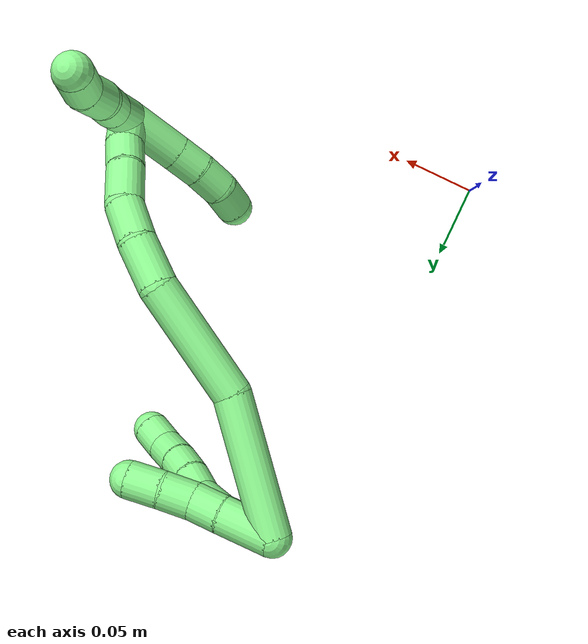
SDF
<sdf version="1.7">
 <world name="default">
  <model name="13">
   <static>0</static>
   <link name="13">
    <collision name="collision-cylinder-e_1_2_8">
     <pose>0.020266 6.4e-05 -0.007694 -3.13322 1.20795 -3.12946</pose>
     <geometry><cylinder><radius>0.0125</radius><length>0.043355</length></cylinder></geometry>
     <surface>
      <friction><ode><mu>1.16</mu><mu2>1.16</mu2><slip1>0</slip1><slip2>0</slip2></ode></friction>
      <contact><ode><kp>1e+06</kp><kd>1</kd><max_vel>0</max_vel><min_depth>0.001</min_depth></ode></contact>
     </surface>
    </collision>
    <visual name="visual-cylinder-e_1_2_8">
     <pose>0.020266 6.4e-05 -0.007694 -3.13322 1.20795 -3.12946</pose>
     <geometry><cylinder><radius>0.0125</radius><length>0.043355</length></cylinder></geometry>
     <material><ambient>0.564706 0.984314 0.572549 1</ambient></material>
    </visual>
    <collision name="collision-cylinder-e_2_8_9">
     <pose>0.050713 -0.001151 -0.022739 2.96927 0.938313 2.80404</pose>
     <geometry><cylinder><radius>0.0125</radius><length>0.025246</length></cylinder></geometry>
     <surface>
      <friction><ode><mu>1.16</mu><mu2>1.16</mu2><slip1>0</slip1><slip2>0</slip2></ode></friction>
      <contact><ode><kp>1e+06</kp><kd>1</kd><max_vel>0</max_vel><min_depth>0.001</min_depth></ode></contact>
     </surface>
    </collision>
    <visual name="visual-cylinder-e_2_8_9">
     <pose>0.050713 -0.001151 -0.022739 2.96927 0.938313 2.80404</pose>
     <geometry><cylinder><radius>0.0125</radius><length>0.025246</length></cylinder></geometry>
     <material><ambient>0.564706 0.984314 0.572549 1</ambient></material>
    </visual>
    <collision name="collision-cylinder-e_3_9_10">
     <pose>0.068609 -0.006374 -0.035651 2.52458 0.847091 1.91095</pose>
     <geometry><cylinder><radius>0.0125</radius><length>0.02059</length></cylinder></geometry>
     <surface>
      <friction><ode><mu>1.16</mu><mu2>1.16</mu2><slip1>0</slip1><slip2>0</slip2></ode></friction>
      <contact><ode><kp>1e+06</kp><kd>1</kd><max_vel>0</max_vel><min_depth>0.001</min_depth></ode></contact>
     </surface>
    </collision>
    <visual name="visual-cylinder-e_3_9_10">
     <pose>0.068609 -0.006374 -0.035651 2.52458 0.847091 1.91095</pose>
     <geometry><cylinder><radius>0.0125</radius><length>0.02059</length></cylinder></geometry>
     <material><ambient>0.564706 0.984314 0.572549 1</ambient></material>
    </visual>
    <collision name="collision-cylinder-e_4_10_11">
     <pose>0.084318 -0.013175 -0.046813 2.67021 0.90426 2.22316</pose>
     <geometry><cylinder><radius>0.0125</radius><length>0.020342</length></cylinder></geometry>
     <surface>
      <friction><ode><mu>1.16</mu><mu2>1.16</mu2><slip1>0</slip1><slip2>0</slip2></ode></friction>
      <contact><ode><kp>1e+06</kp><kd>1</kd><max_vel>0</max_vel><min_depth>0.001</min_depth></ode></contact>
     </surface>
    </collision>
    <visual name="visual-cylinder-e_4_10_11">
     <pose>0.084318 -0.013175 -0.046813 2.67021 0.90426 2.22316</pose>
     <geometry><cylinder><radius>0.0125</radius><length>0.020342</length></cylinder></geometry>
     <material><ambient>0.564706 0.984314 0.572549 1</ambient></material>
    </visual>
    <collision name="collision-cylinder-e_5_11_12">
     <pose>0.100402 -0.017932 -0.05834 2.831 0.915192 2.52598</pose>
     <geometry><cylinder><radius>0.0125</radius><length>0.020412</length></cylinder></geometry>
     <surface>
      <friction><ode><mu>1.16</mu><mu2>1.16</mu2><slip1>0</slip1><slip2>0</slip2></ode></friction>
      <contact><ode><kp>1e+06</kp><kd>1</kd><max_vel>0</max_vel><min_depth>0.001</min_depth></ode></contact>
     </surface>
    </collision>
    <visual name="visual-cylinder-e_5_11_12">
     <pose>0.100402 -0.017932 -0.05834 2.831 0.915192 2.52598</pose>
     <geometry><cylinder><radius>0.0125</radius><length>0.020412</length></cylinder></geometry>
     <material><ambient>0.564706 0.984314 0.572549 1</ambient></material>
    </visual>
    <collision name="collision-cylinder-e_6_12_6">
     <pose>0.117126 -0.023327 -0.067981 2.38714 1.03716 1.92786</pose>
     <geometry><cylinder><radius>0.0125</radius><length>0.020055</length></cylinder></geometry>
     <surface>
      <friction><ode><mu>1.16</mu><mu2>1.16</mu2><slip1>0</slip1><slip2>0</slip2></ode></friction>
      <contact><ode><kp>1e+06</kp><kd>1</kd><max_vel>0</max_vel><min_depth>0.001</min_depth></ode></contact>
     </surface>
    </collision>
    <visual name="visual-cylinder-e_6_12_6">
     <pose>0.117126 -0.023327 -0.067981 2.38714 1.03716 1.92786</pose>
     <geometry><cylinder><radius>0.0125</radius><length>0.020055</length></cylinder></geometry>
     <material><ambient>0.564706 0.984314 0.572549 1</ambient></material>
    </visual>
    <collision name="collision-cylinder-e_1_2_13">
     <pose>0.017376 -0.001078 0.00037 1.24059 1.50529 1.17927</pose>
     <geometry><cylinder><radius>0.0125</radius><length>0.034827</length></cylinder></geometry>
     <surface>
      <friction><ode><mu>1.16</mu><mu2>1.16</mu2><slip1>0</slip1><slip2>0</slip2></ode></friction>
      <contact><ode><kp>1e+06</kp><kd>1</kd><max_vel>0</max_vel><min_depth>0.001</min_depth></ode></contact>
     </surface>
    </collision>
    <visual name="visual-cylinder-e_1_2_13">
     <pose>0.017376 -0.001078 0.00037 1.24059 1.50529 1.17927</pose>
     <geometry><cylinder><radius>0.0125</radius><length>0.034827</length></cylinder></geometry>
     <material><ambient>0.564706 0.984314 0.572549 1</ambient></material>
    </visual>
    <collision name="collision-cylinder-e_2_13_14">
     <pose>0.045166 -0.002773 0.000217 2.27406 1.49334 2.21345</pose>
     <geometry><cylinder><radius>0.0125</radius><length>0.020891</length></cylinder></geometry>
     <surface>
      <friction><ode><mu>1.16</mu><mu2>1.16</mu2><slip1>0</slip1><slip2>0</slip2></ode></friction>
      <contact><ode><kp>1e+06</kp><kd>1</kd><max_vel>0</max_vel><min_depth>0.001</min_depth></ode></contact>
     </surface>
    </collision>
    <visual name="visual-cylinder-e_2_13_14">
     <pose>0.045166 -0.002773 0.000217 2.27406 1.49334 2.21345</pose>
     <geometry><cylinder><radius>0.0125</radius><length>0.020891</length></cylinder></geometry>
     <material><ambient>0.564706 0.984314 0.572549 1</ambient></material>
    </visual>
    <collision name="collision-cylinder-e_3_14_15">
     <pose>0.066109 -0.00347 0.001955 0.035255 1.3591 0.028484</pose>
     <geometry><cylinder><radius>0.0125</radius><length>0.021538</length></cylinder></geometry>
     <surface>
      <friction><ode><mu>1.16</mu><mu2>1.16</mu2><slip1>0</slip1><slip2>0</slip2></ode></friction>
      <contact><ode><kp>1e+06</kp><kd>1</kd><max_vel>0</max_vel><min_depth>0.001</min_depth></ode></contact>
     </surface>
    </collision>
    <visual name="visual-cylinder-e_3_14_15">
     <pose>0.066109 -0.00347 0.001955 0.035255 1.3591 0.028484</pose>
     <geometry><cylinder><radius>0.0125</radius><length>0.021538</length></cylinder></geometry>
     <material><ambient>0.564706 0.984314 0.572549 1</ambient></material>
    </visual>
    <collision name="collision-cylinder-e_4_15_5">
     <pose>0.087947 -0.003062 0.005302 -0.422093 1.46593 -0.381063</pose>
     <geometry><cylinder><radius>0.0125</radius><length>0.022744</length></cylinder></geometry>
     <surface>
      <friction><ode><mu>1.16</mu><mu2>1.16</mu2><slip1>0</slip1><slip2>0</slip2></ode></friction>
      <contact><ode><kp>1e+06</kp><kd>1</kd><max_vel>0</max_vel><min_depth>0.001</min_depth></ode></contact>
     </surface>
    </collision>
    <visual name="visual-cylinder-e_4_15_5">
     <pose>0.087947 -0.003062 0.005302 -0.422093 1.46593 -0.381063</pose>
     <geometry><cylinder><radius>0.0125</radius><length>0.022744</length></cylinder></geometry>
     <material><ambient>0.564706 0.984314 0.572549 1</ambient></material>
    </visual>
    <collision name="collision-cylinder-e_1_2_16">
     <pose>0.024368 -0.038166 0.007991 1.36441 0.558541 0.457724</pose>
     <geometry><cylinder><radius>0.0125</radius><length>0.091962</length></cylinder></geometry>
     <surface>
      <friction><ode><mu>1.16</mu><mu2>1.16</mu2><slip1>0</slip1><slip2>0</slip2></ode></friction>
      <contact><ode><kp>1e+06</kp><kd>1</kd><max_vel>0</max_vel><min_depth>0.001</min_depth></ode></contact>
     </surface>
    </collision>
    <visual name="visual-cylinder-e_1_2_16">
     <pose>0.024368 -0.038166 0.007991 1.36441 0.558541 0.457724</pose>
     <geometry><cylinder><radius>0.0125</radius><length>0.091962</length></cylinder></geometry>
     <material><ambient>0.564706 0.984314 0.572549 1</ambient></material>
    </visual>
    <collision name="collision-cylinder-e_2_16_17">
     <pose>0.077788 -0.100457 0.028456 1.09357 0.819057 0.516624</pose>
     <geometry><cylinder><radius>0.0125</radius><length>0.079543</length></cylinder></geometry>
     <surface>
      <friction><ode><mu>1.16</mu><mu2>1.16</mu2><slip1>0</slip1><slip2>0</slip2></ode></friction>
      <contact><ode><kp>1e+06</kp><kd>1</kd><max_vel>0</max_vel><min_depth>0.001</min_depth></ode></contact>
     </surface>
    </collision>
    <visual name="visual-cylinder-e_2_16_17">
     <pose>0.077788 -0.100457 0.028456 1.09357 0.819057 0.516624</pose>
     <geometry><cylinder><radius>0.0125</radius><length>0.079543</length></cylinder></geometry>
     <material><ambient>0.564706 0.984314 0.572549 1</ambient></material>
    </visual>
    <collision name="collision-cylinder-e_3_17_18">
     <pose>0.11805 -0.135745 0.041228 1.54428 0.787324 0.768714</pose>
     <geometry><cylinder><radius>0.0125</radius><length>0.031644</length></cylinder></geometry>
     <surface>
      <friction><ode><mu>1.16</mu><mu2>1.16</mu2><slip1>0</slip1><slip2>0</slip2></ode></friction>
      <contact><ode><kp>1e+06</kp><kd>1</kd><max_vel>0</max_vel><min_depth>0.001</min_depth></ode></contact>
     </surface>
    </collision>
    <visual name="visual-cylinder-e_3_17_18">
     <pose>0.11805 -0.135745 0.041228 1.54428 0.787324 0.768714</pose>
     <geometry><cylinder><radius>0.0125</radius><length>0.031644</length></cylinder></geometry>
     <material><ambient>0.564706 0.984314 0.572549 1</ambient></material>
    </visual>
    <collision name="collision-cylinder-e_4_18_19">
     <pose>0.138296 -0.15658 0.039167 1.80976 0.736999 0.913654</pose>
     <geometry><cylinder><radius>0.0125</radius><length>0.02689</length></cylinder></geometry>
     <surface>
      <friction><ode><mu>1.16</mu><mu2>1.16</mu2><slip1>0</slip1><slip2>0</slip2></ode></friction>
      <contact><ode><kp>1e+06</kp><kd>1</kd><max_vel>0</max_vel><min_depth>0.001</min_depth></ode></contact>
     </surface>
    </collision>
    <visual name="visual-cylinder-e_4_18_19">
     <pose>0.138296 -0.15658 0.039167 1.80976 0.736999 0.913654</pose>
     <geometry><cylinder><radius>0.0125</radius><length>0.02689</length></cylinder></geometry>
     <material><ambient>0.564706 0.984314 0.572549 1</ambient></material>
    </visual>
    <collision name="collision-cylinder-e_5_19_20">
     <pose>0.153596 -0.177753 0.03142 2.00908 0.458246 0.703248</pose>
     <geometry><cylinder><radius>0.0125</radius><length>0.028323</length></cylinder></geometry>
     <surface>
      <friction><ode><mu>1.16</mu><mu2>1.16</mu2><slip1>0</slip1><slip2>0</slip2></ode></friction>
      <contact><ode><kp>1e+06</kp><kd>1</kd><max_vel>0</max_vel><min_depth>0.001</min_depth></ode></contact>
     </surface>
    </collision>
    <visual name="visual-cylinder-e_5_19_20">
     <pose>0.153596 -0.177753 0.03142 2.00908 0.458246 0.703248</pose>
     <geometry><cylinder><radius>0.0125</radius><length>0.028323</length></cylinder></geometry>
     <material><ambient>0.564706 0.984314 0.572549 1</ambient></material>
    </visual>
    <collision name="collision-cylinder-e_6_20_21">
     <pose>0.165252 -0.197065 0.021286 2.1166 0.532922 0.903354</pose>
     <geometry><cylinder><radius>0.0125</radius><length>0.021222</length></cylinder></geometry>
     <surface>
      <friction><ode><mu>1.16</mu><mu2>1.16</mu2><slip1>0</slip1><slip2>0</slip2></ode></friction>
      <contact><ode><kp>1e+06</kp><kd>1</kd><max_vel>0</max_vel><min_depth>0.001</min_depth></ode></contact>
     </surface>
    </collision>
    <visual name="visual-cylinder-e_6_20_21">
     <pose>0.165252 -0.197065 0.021286 2.1166 0.532922 0.903354</pose>
     <geometry><cylinder><radius>0.0125</radius><length>0.021222</length></cylinder></geometry>
     <material><ambient>0.564706 0.984314 0.572549 1</ambient></material>
    </visual>
    <collision name="collision-cylinder-e_7_21_1">
     <pose>0.174084 -0.213857 0.013117 1.93519 0.343826 0.493824</pose>
     <geometry><cylinder><radius>0.0125</radius><length>0.020416</length></cylinder></geometry>
     <surface>
      <friction><ode><mu>1.16</mu><mu2>1.16</mu2><slip1>0</slip1><slip2>0</slip2></ode></friction>
      <contact><ode><kp>1e+06</kp><kd>1</kd><max_vel>0</max_vel><min_depth>0.001</min_depth></ode></contact>
     </surface>
    </collision>
    <visual name="visual-cylinder-e_7_21_1">
     <pose>0.174084 -0.213857 0.013117 1.93519 0.343826 0.493824</pose>
     <geometry><cylinder><radius>0.0125</radius><length>0.020416</length></cylinder></geometry>
     <material><ambient>0.564706 0.984314 0.572549 1</ambient></material>
    </visual>
    <collision name="collision-cylinder-e_1_1_22">
     <pose>0.163641 -0.217847 -0.003185 -2.77197 -0.788119 2.29656</pose>
     <geometry><cylinder><radius>0.0125</radius><length>0.039165</length></cylinder></geometry>
     <surface>
      <friction><ode><mu>1.16</mu><mu2>1.16</mu2><slip1>0</slip1><slip2>0</slip2></ode></friction>
      <contact><ode><kp>1e+06</kp><kd>1</kd><max_vel>0</max_vel><min_depth>0.001</min_depth></ode></contact>
     </surface>
    </collision>
    <visual name="visual-cylinder-e_1_1_22">
     <pose>0.163641 -0.217847 -0.003185 -2.77197 -0.788119 2.29656</pose>
     <geometry><cylinder><radius>0.0125</radius><length>0.039165</length></cylinder></geometry>
     <material><ambient>0.564706 0.984314 0.572549 1</ambient></material>
    </visual>
    <collision name="collision-cylinder-e_2_22_23">
     <pose>0.142489 -0.210163 -0.022384 -2.7386 -0.813293 2.25579</pose>
     <geometry><cylinder><radius>0.0125</radius><length>0.020005</length></cylinder></geometry>
     <surface>
      <friction><ode><mu>1.16</mu><mu2>1.16</mu2><slip1>0</slip1><slip2>0</slip2></ode></friction>
      <contact><ode><kp>1e+06</kp><kd>1</kd><max_vel>0</max_vel><min_depth>0.001</min_depth></ode></contact>
     </surface>
    </collision>
    <visual name="visual-cylinder-e_2_22_23">
     <pose>0.142489 -0.210163 -0.022384 -2.7386 -0.813293 2.25579</pose>
     <geometry><cylinder><radius>0.0125</radius><length>0.020005</length></cylinder></geometry>
     <material><ambient>0.564706 0.984314 0.572549 1</ambient></material>
    </visual>
    <collision name="collision-cylinder-e_3_23_24">
     <pose>0.128737 -0.20418 -0.035796 -2.70732 -0.692584 2.04407</pose>
     <geometry><cylinder><radius>0.0125</radius><length>0.02031</length></cylinder></geometry>
     <surface>
      <friction><ode><mu>1.16</mu><mu2>1.16</mu2><slip1>0</slip1><slip2>0</slip2></ode></friction>
      <contact><ode><kp>1e+06</kp><kd>1</kd><max_vel>0</max_vel><min_depth>0.001</min_depth></ode></contact>
     </surface>
    </collision>
    <visual name="visual-cylinder-e_3_23_24">
     <pose>0.128737 -0.20418 -0.035796 -2.70732 -0.692584 2.04407</pose>
     <geometry><cylinder><radius>0.0125</radius><length>0.02031</length></cylinder></geometry>
     <material><ambient>0.564706 0.984314 0.572549 1</ambient></material>
    </visual>
    <collision name="collision-cylinder-e_4_24_4">
     <pose>0.118506 -0.196976 -0.051598 -2.71927 -0.373792 1.44578</pose>
     <geometry><cylinder><radius>0.0125</radius><length>0.020519</length></cylinder></geometry>
     <surface>
      <friction><ode><mu>1.16</mu><mu2>1.16</mu2><slip1>0</slip1><slip2>0</slip2></ode></friction>
      <contact><ode><kp>1e+06</kp><kd>1</kd><max_vel>0</max_vel><min_depth>0.001</min_depth></ode></contact>
     </surface>
    </collision>
    <visual name="visual-cylinder-e_4_24_4">
     <pose>0.118506 -0.196976 -0.051598 -2.71927 -0.373792 1.44578</pose>
     <geometry><cylinder><radius>0.0125</radius><length>0.020519</length></cylinder></geometry>
     <material><ambient>0.564706 0.984314 0.572549 1</ambient></material>
    </visual>
    <collision name="collision-cylinder-e_1_1_25">
     <pose>0.175482 -0.221972 0.026618 -0.051019 -0.120001 0.003066</pose>
     <geometry><cylinder><radius>0.0125</radius><length>0.034142</length></cylinder></geometry>
     <surface>
      <friction><ode><mu>1.16</mu><mu2>1.16</mu2><slip1>0</slip1><slip2>0</slip2></ode></friction>
      <contact><ode><kp>1e+06</kp><kd>1</kd><max_vel>0</max_vel><min_depth>0.001</min_depth></ode></contact>
     </surface>
    </collision>
    <visual name="visual-cylinder-e_1_1_25">
     <pose>0.175482 -0.221972 0.026618 -0.051019 -0.120001 0.003066</pose>
     <geometry><cylinder><radius>0.0125</radius><length>0.034142</length></cylinder></geometry>
     <material><ambient>0.564706 0.984314 0.572549 1</ambient></material>
    </visual>
    <collision name="collision-cylinder-e_2_25_26">
     <pose>0.171163 -0.221086 0.05487 -0.001887 -0.198275 0.000188</pose>
     <geometry><cylinder><radius>0.0125</radius><length>0.023105</length></cylinder></geometry>
     <surface>
      <friction><ode><mu>1.16</mu><mu2>1.16</mu2><slip1>0</slip1><slip2>0</slip2></ode></friction>
      <contact><ode><kp>1e+06</kp><kd>1</kd><max_vel>0</max_vel><min_depth>0.001</min_depth></ode></contact>
     </surface>
    </collision>
    <visual name="visual-cylinder-e_2_25_26">
     <pose>0.171163 -0.221086 0.05487 -0.001887 -0.198275 0.000188</pose>
     <geometry><cylinder><radius>0.0125</radius><length>0.023105</length></cylinder></geometry>
     <material><ambient>0.564706 0.984314 0.572549 1</ambient></material>
    </visual>
    <collision name="collision-cylinder-e_3_26_27">
     <pose>0.170052 -0.220752 0.076713 -0.029745 0.110255 -0.001642</pose>
     <geometry><cylinder><radius>0.0125</radius><length>0.021171</length></cylinder></geometry>
     <surface>
      <friction><ode><mu>1.16</mu><mu2>1.16</mu2><slip1>0</slip1><slip2>0</slip2></ode></friction>
      <contact><ode><kp>1e+06</kp><kd>1</kd><max_vel>0</max_vel><min_depth>0.001</min_depth></ode></contact>
     </surface>
    </collision>
    <visual name="visual-cylinder-e_3_26_27">
     <pose>0.170052 -0.220752 0.076713 -0.029745 0.110255 -0.001642</pose>
     <geometry><cylinder><radius>0.0125</radius><length>0.021171</length></cylinder></geometry>
     <material><ambient>0.564706 0.984314 0.572549 1</ambient></material>
    </visual>
    <collision name="collision-cylinder-e_4_27_3">
     <pose>0.170063 -0.222902 0.097672 0.231624 -0.107138 -0.012475</pose>
     <geometry><cylinder><radius>0.0125</radius><length>0.021582</length></cylinder></geometry>
     <surface>
      <friction><ode><mu>1.16</mu><mu2>1.16</mu2><slip1>0</slip1><slip2>0</slip2></ode></friction>
      <contact><ode><kp>1e+06</kp><kd>1</kd><max_vel>0</max_vel><min_depth>0.001</min_depth></ode></contact>
     </surface>
    </collision>
    <visual name="visual-cylinder-e_4_27_3">
     <pose>0.170063 -0.222902 0.097672 0.231624 -0.107138 -0.012475</pose>
     <geometry><cylinder><radius>0.0125</radius><length>0.021582</length></cylinder></geometry>
     <material><ambient>0.564706 0.984314 0.572549 1</ambient></material>
    </visual>
    <collision name="collision-sphere-3">
     <pose>0.168909 -0.225365 0.108114 0 -0 0</pose>
     <geometry><sphere><radius>0.0125</radius></sphere></geometry>
     <surface>
      <friction><ode><mu>1.16</mu><mu2>1.16</mu2><slip1>0</slip1><slip2>0</slip2></ode></friction>
      <contact><ode><kp>1e+06</kp><kd>1</kd><max_vel>0</max_vel><min_depth>0.001</min_depth></ode></contact>
     </surface>
    </collision>
    <visual name="visual-sphere-3">
     <pose>0.168909 -0.225365 0.108114 0 -0 0</pose>
     <geometry><sphere><radius>0.0125</radius></sphere></geometry>
     <material><ambient>0.564706 0.984314 0.572549 1</ambient></material>
    </visual>
    <collision name="collision-sphere-27">
     <pose>0.171216 -0.220439 0.08723 0 -0 0</pose>
     <geometry><sphere><radius>0.0125</radius></sphere></geometry>
     <surface>
      <friction><ode><mu>1.16</mu><mu2>1.16</mu2><slip1>0</slip1><slip2>0</slip2></ode></friction>
      <contact><ode><kp>1e+06</kp><kd>1</kd><max_vel>0</max_vel><min_depth>0.001</min_depth></ode></contact>
     </surface>
    </collision>
    <visual name="visual-sphere-27">
     <pose>0.171216 -0.220439 0.08723 0 -0 0</pose>
     <geometry><sphere><radius>0.0125</radius></sphere></geometry>
     <material><ambient>0.564706 0.984314 0.572549 1</ambient></material>
    </visual>
    <collision name="collision-sphere-26">
     <pose>0.168887 -0.221065 0.066196 0 -0 0</pose>
     <geometry><sphere><radius>0.0125</radius></sphere></geometry>
     <surface>
      <friction><ode><mu>1.16</mu><mu2>1.16</mu2><slip1>0</slip1><slip2>0</slip2></ode></friction>
      <contact><ode><kp>1e+06</kp><kd>1</kd><max_vel>0</max_vel><min_depth>0.001</min_depth></ode></contact>
     </surface>
    </collision>
    <visual name="visual-sphere-26">
     <pose>0.168887 -0.221065 0.066196 0 -0 0</pose>
     <geometry><sphere><radius>0.0125</radius></sphere></geometry>
     <material><ambient>0.564706 0.984314 0.572549 1</ambient></material>
    </visual>
    <collision name="collision-sphere-25">
     <pose>0.173438 -0.221108 0.043544 0 -0 0</pose>
     <geometry><sphere><radius>0.0125</radius></sphere></geometry>
     <surface>
      <friction><ode><mu>1.16</mu><mu2>1.16</mu2><slip1>0</slip1><slip2>0</slip2></ode></friction>
      <contact><ode><kp>1e+06</kp><kd>1</kd><max_vel>0</max_vel><min_depth>0.001</min_depth></ode></contact>
     </surface>
    </collision>
    <visual name="visual-sphere-25">
     <pose>0.173438 -0.221108 0.043544 0 -0 0</pose>
     <geometry><sphere><radius>0.0125</radius></sphere></geometry>
     <material><ambient>0.564706 0.984314 0.572549 1</ambient></material>
    </visual>
    <collision name="collision-sphere-4">
     <pose>0.11476 -0.193062 -0.06031 0 -0 0</pose>
     <geometry><sphere><radius>0.0125</radius></sphere></geometry>
     <surface>
      <friction><ode><mu>1.16</mu><mu2>1.16</mu2><slip1>0</slip1><slip2>0</slip2></ode></friction>
      <contact><ode><kp>1e+06</kp><kd>1</kd><max_vel>0</max_vel><min_depth>0.001</min_depth></ode></contact>
     </surface>
    </collision>
    <visual name="visual-sphere-4">
     <pose>0.11476 -0.193062 -0.06031 0 -0 0</pose>
     <geometry><sphere><radius>0.0125</radius></sphere></geometry>
     <material><ambient>0.564706 0.984314 0.572549 1</ambient></material>
    </visual>
    <collision name="collision-sphere-24">
     <pose>0.122253 -0.200891 -0.042886 0 -0 0</pose>
     <geometry><sphere><radius>0.0125</radius></sphere></geometry>
     <surface>
      <friction><ode><mu>1.16</mu><mu2>1.16</mu2><slip1>0</slip1><slip2>0</slip2></ode></friction>
      <contact><ode><kp>1e+06</kp><kd>1</kd><max_vel>0</max_vel><min_depth>0.001</min_depth></ode></contact>
     </surface>
    </collision>
    <visual name="visual-sphere-24">
     <pose>0.122253 -0.200891 -0.042886 0 -0 0</pose>
     <geometry><sphere><radius>0.0125</radius></sphere></geometry>
     <material><ambient>0.564706 0.984314 0.572549 1</ambient></material>
    </visual>
    <collision name="collision-sphere-23">
     <pose>0.135221 -0.207468 -0.028706 0 -0 0</pose>
     <geometry><sphere><radius>0.0125</radius></sphere></geometry>
     <surface>
      <friction><ode><mu>1.16</mu><mu2>1.16</mu2><slip1>0</slip1><slip2>0</slip2></ode></friction>
      <contact><ode><kp>1e+06</kp><kd>1</kd><max_vel>0</max_vel><min_depth>0.001</min_depth></ode></contact>
     </surface>
    </collision>
    <visual name="visual-sphere-23">
     <pose>0.135221 -0.207468 -0.028706 0 -0 0</pose>
     <geometry><sphere><radius>0.0125</radius></sphere></geometry>
     <material><ambient>0.564706 0.984314 0.572549 1</ambient></material>
    </visual>
    <collision name="collision-sphere-22">
     <pose>0.149756 -0.212859 -0.016062 0 -0 0</pose>
     <geometry><sphere><radius>0.0125</radius></sphere></geometry>
     <surface>
      <friction><ode><mu>1.16</mu><mu2>1.16</mu2><slip1>0</slip1><slip2>0</slip2></ode></friction>
      <contact><ode><kp>1e+06</kp><kd>1</kd><max_vel>0</max_vel><min_depth>0.001</min_depth></ode></contact>
     </surface>
    </collision>
    <visual name="visual-sphere-22">
     <pose>0.149756 -0.212859 -0.016062 0 -0 0</pose>
     <geometry><sphere><radius>0.0125</radius></sphere></geometry>
     <material><ambient>0.564706 0.984314 0.572549 1</ambient></material>
    </visual>
    <collision name="collision-sphere-1">
     <pose>0.177525 -0.222836 0.009691 0 -0 0</pose>
     <geometry><sphere><radius>0.0125</radius></sphere></geometry>
     <surface>
      <friction><ode><mu>1.16</mu><mu2>1.16</mu2><slip1>0</slip1><slip2>0</slip2></ode></friction>
      <contact><ode><kp>1e+06</kp><kd>1</kd><max_vel>0</max_vel><min_depth>0.001</min_depth></ode></contact>
     </surface>
    </collision>
    <visual name="visual-sphere-1">
     <pose>0.177525 -0.222836 0.009691 0 -0 0</pose>
     <geometry><sphere><radius>0.0125</radius></sphere></geometry>
     <material><ambient>0.564706 0.984314 0.572549 1</ambient></material>
    </visual>
    <collision name="collision-sphere-21">
     <pose>0.170643 -0.204877 0.016542 0 -0 0</pose>
     <geometry><sphere><radius>0.0125</radius></sphere></geometry>
     <surface>
      <friction><ode><mu>1.16</mu><mu2>1.16</mu2><slip1>0</slip1><slip2>0</slip2></ode></friction>
      <contact><ode><kp>1e+06</kp><kd>1</kd><max_vel>0</max_vel><min_depth>0.001</min_depth></ode></contact>
     </surface>
    </collision>
    <visual name="visual-sphere-21">
     <pose>0.170643 -0.204877 0.016542 0 -0 0</pose>
     <geometry><sphere><radius>0.0125</radius></sphere></geometry>
     <material><ambient>0.564706 0.984314 0.572549 1</ambient></material>
    </visual>
    <collision name="collision-sphere-12">
     <pose>0.108492 -0.019833 -0.064264 0 -0 0</pose>
     <geometry><sphere><radius>0.0125</radius></sphere></geometry>
     <surface>
      <friction><ode><mu>1.16</mu><mu2>1.16</mu2><slip1>0</slip1><slip2>0</slip2></ode></friction>
      <contact><ode><kp>1e+06</kp><kd>1</kd><max_vel>0</max_vel><min_depth>0.001</min_depth></ode></contact>
     </surface>
    </collision>
    <visual name="visual-sphere-12">
     <pose>0.108492 -0.019833 -0.064264 0 -0 0</pose>
     <geometry><sphere><radius>0.0125</radius></sphere></geometry>
     <material><ambient>0.564706 0.984314 0.572549 1</ambient></material>
    </visual>
    <collision name="collision-sphere-11">
     <pose>0.092312 -0.01603 -0.052416 0 -0 0</pose>
     <geometry><sphere><radius>0.0125</radius></sphere></geometry>
     <surface>
      <friction><ode><mu>1.16</mu><mu2>1.16</mu2><slip1>0</slip1><slip2>0</slip2></ode></friction>
      <contact><ode><kp>1e+06</kp><kd>1</kd><max_vel>0</max_vel><min_depth>0.001</min_depth></ode></contact>
     </surface>
    </collision>
    <visual name="visual-sphere-11">
     <pose>0.092312 -0.01603 -0.052416 0 -0 0</pose>
     <geometry><sphere><radius>0.0125</radius></sphere></geometry>
     <material><ambient>0.564706 0.984314 0.572549 1</ambient></material>
    </visual>
    <collision name="collision-sphere-10">
     <pose>0.076324 -0.010319 -0.041211 0 -0 0</pose>
     <geometry><sphere><radius>0.0125</radius></sphere></geometry>
     <surface>
      <friction><ode><mu>1.16</mu><mu2>1.16</mu2><slip1>0</slip1><slip2>0</slip2></ode></friction>
      <contact><ode><kp>1e+06</kp><kd>1</kd><max_vel>0</max_vel><min_depth>0.001</min_depth></ode></contact>
     </surface>
    </collision>
    <visual name="visual-sphere-10">
     <pose>0.076324 -0.010319 -0.041211 0 -0 0</pose>
     <geometry><sphere><radius>0.0125</radius></sphere></geometry>
     <material><ambient>0.564706 0.984314 0.572549 1</ambient></material>
    </visual>
    <collision name="collision-sphere-9">
     <pose>0.060894 -0.00243 -0.030091 0 -0 0</pose>
     <geometry><sphere><radius>0.0125</radius></sphere></geometry>
     <surface>
      <friction><ode><mu>1.16</mu><mu2>1.16</mu2><slip1>0</slip1><slip2>0</slip2></ode></friction>
      <contact><ode><kp>1e+06</kp><kd>1</kd><max_vel>0</max_vel><min_depth>0.001</min_depth></ode></contact>
     </surface>
    </collision>
    <visual name="visual-sphere-9">
     <pose>0.060894 -0.00243 -0.030091 0 -0 0</pose>
     <geometry><sphere><radius>0.0125</radius></sphere></geometry>
     <material><ambient>0.564706 0.984314 0.572549 1</ambient></material>
    </visual>
    <collision name="collision-sphere-2">
     <geometry><sphere><radius>0.0125</radius></sphere></geometry>
     <surface>
      <friction><ode><mu>1.16</mu><mu2>1.16</mu2><slip1>0</slip1><slip2>0</slip2></ode></friction>
      <contact><ode><kp>1e+06</kp><kd>1</kd><max_vel>0</max_vel><min_depth>0.001</min_depth></ode></contact>
     </surface>
    </collision>
    <visual name="visual-sphere-2">
     <geometry><sphere><radius>0.0125</radius></sphere></geometry>
     <material><ambient>0.564706 0.984314 0.572549 1</ambient></material>
    </visual>
    <collision name="collision-sphere-19">
     <pose>0.147332 -0.166253 0.03681 0 -0 0</pose>
     <geometry><sphere><radius>0.0125</radius></sphere></geometry>
     <surface>
      <friction><ode><mu>1.16</mu><mu2>1.16</mu2><slip1>0</slip1><slip2>0</slip2></ode></friction>
      <contact><ode><kp>1e+06</kp><kd>1</kd><max_vel>0</max_vel><min_depth>0.001</min_depth></ode></contact>
     </surface>
    </collision>
    <visual name="visual-sphere-19">
     <pose>0.147332 -0.166253 0.03681 0 -0 0</pose>
     <geometry><sphere><radius>0.0125</radius></sphere></geometry>
     <material><ambient>0.564706 0.984314 0.572549 1</ambient></material>
    </visual>
    <collision name="collision-sphere-8">
     <pose>0.040532 0.000129 -0.015388 0 -0 0</pose>
     <geometry><sphere><radius>0.0125</radius></sphere></geometry>
     <surface>
      <friction><ode><mu>1.16</mu><mu2>1.16</mu2><slip1>0</slip1><slip2>0</slip2></ode></friction>
      <contact><ode><kp>1e+06</kp><kd>1</kd><max_vel>0</max_vel><min_depth>0.001</min_depth></ode></contact>
     </surface>
    </collision>
    <visual name="visual-sphere-8">
     <pose>0.040532 0.000129 -0.015388 0 -0 0</pose>
     <geometry><sphere><radius>0.0125</radius></sphere></geometry>
     <material><ambient>0.564706 0.984314 0.572549 1</ambient></material>
    </visual>
    <collision name="collision-sphere-6">
     <pose>0.125759 -0.02682 -0.071698 0 -0 0</pose>
     <geometry><sphere><radius>0.0125</radius></sphere></geometry>
     <surface>
      <friction><ode><mu>1.16</mu><mu2>1.16</mu2><slip1>0</slip1><slip2>0</slip2></ode></friction>
      <contact><ode><kp>1e+06</kp><kd>1</kd><max_vel>0</max_vel><min_depth>0.001</min_depth></ode></contact>
     </surface>
    </collision>
    <visual name="visual-sphere-6">
     <pose>0.125759 -0.02682 -0.071698 0 -0 0</pose>
     <geometry><sphere><radius>0.0125</radius></sphere></geometry>
     <material><ambient>0.564706 0.984314 0.572549 1</ambient></material>
    </visual>
    <collision name="collision-sphere-13">
     <pose>0.034752 -0.002157 0.000739 0 -0 0</pose>
     <geometry><sphere><radius>0.0125</radius></sphere></geometry>
     <surface>
      <friction><ode><mu>1.16</mu><mu2>1.16</mu2><slip1>0</slip1><slip2>0</slip2></ode></friction>
      <contact><ode><kp>1e+06</kp><kd>1</kd><max_vel>0</max_vel><min_depth>0.001</min_depth></ode></contact>
     </surface>
    </collision>
    <visual name="visual-sphere-13">
     <pose>0.034752 -0.002157 0.000739 0 -0 0</pose>
     <geometry><sphere><radius>0.0125</radius></sphere></geometry>
     <material><ambient>0.564706 0.984314 0.572549 1</ambient></material>
    </visual>
    <collision name="collision-sphere-14">
     <pose>0.05558 -0.00339 -0.000306 0 -0 0</pose>
     <geometry><sphere><radius>0.0125</radius></sphere></geometry>
     <surface>
      <friction><ode><mu>1.16</mu><mu2>1.16</mu2><slip1>0</slip1><slip2>0</slip2></ode></friction>
      <contact><ode><kp>1e+06</kp><kd>1</kd><max_vel>0</max_vel><min_depth>0.001</min_depth></ode></contact>
     </surface>
    </collision>
    <visual name="visual-sphere-14">
     <pose>0.05558 -0.00339 -0.000306 0 -0 0</pose>
     <geometry><sphere><radius>0.0125</radius></sphere></geometry>
     <material><ambient>0.564706 0.984314 0.572549 1</ambient></material>
    </visual>
    <collision name="collision-sphere-15">
     <pose>0.076638 -0.003549 0.004216 0 -0 0</pose>
     <geometry><sphere><radius>0.0125</radius></sphere></geometry>
     <surface>
      <friction><ode><mu>1.16</mu><mu2>1.16</mu2><slip1>0</slip1><slip2>0</slip2></ode></friction>
      <contact><ode><kp>1e+06</kp><kd>1</kd><max_vel>0</max_vel><min_depth>0.001</min_depth></ode></contact>
     </surface>
    </collision>
    <visual name="visual-sphere-15">
     <pose>0.076638 -0.003549 0.004216 0 -0 0</pose>
     <geometry><sphere><radius>0.0125</radius></sphere></geometry>
     <material><ambient>0.564706 0.984314 0.572549 1</ambient></material>
    </visual>
    <collision name="collision-sphere-5">
     <pose>0.099257 -0.002574 0.006388 0 -0 0</pose>
     <geometry><sphere><radius>0.0125</radius></sphere></geometry>
     <surface>
      <friction><ode><mu>1.16</mu><mu2>1.16</mu2><slip1>0</slip1><slip2>0</slip2></ode></friction>
      <contact><ode><kp>1e+06</kp><kd>1</kd><max_vel>0</max_vel><min_depth>0.001</min_depth></ode></contact>
     </surface>
    </collision>
    <visual name="visual-sphere-5">
     <pose>0.099257 -0.002574 0.006388 0 -0 0</pose>
     <geometry><sphere><radius>0.0125</radius></sphere></geometry>
     <material><ambient>0.564706 0.984314 0.572549 1</ambient></material>
    </visual>
    <collision name="collision-sphere-16">
     <pose>0.048735 -0.076331 0.015981 0 -0 0</pose>
     <geometry><sphere><radius>0.0125</radius></sphere></geometry>
     <surface>
      <friction><ode><mu>1.16</mu><mu2>1.16</mu2><slip1>0</slip1><slip2>0</slip2></ode></friction>
      <contact><ode><kp>1e+06</kp><kd>1</kd><max_vel>0</max_vel><min_depth>0.001</min_depth></ode></contact>
     </surface>
    </collision>
    <visual name="visual-sphere-16">
     <pose>0.048735 -0.076331 0.015981 0 -0 0</pose>
     <geometry><sphere><radius>0.0125</radius></sphere></geometry>
     <material><ambient>0.564706 0.984314 0.572549 1</ambient></material>
    </visual>
    <collision name="collision-sphere-17">
     <pose>0.106841 -0.124583 0.040932 0 -0 0</pose>
     <geometry><sphere><radius>0.0125</radius></sphere></geometry>
     <surface>
      <friction><ode><mu>1.16</mu><mu2>1.16</mu2><slip1>0</slip1><slip2>0</slip2></ode></friction>
      <contact><ode><kp>1e+06</kp><kd>1</kd><max_vel>0</max_vel><min_depth>0.001</min_depth></ode></contact>
     </surface>
    </collision>
    <visual name="visual-sphere-17">
     <pose>0.106841 -0.124583 0.040932 0 -0 0</pose>
     <geometry><sphere><radius>0.0125</radius></sphere></geometry>
     <material><ambient>0.564706 0.984314 0.572549 1</ambient></material>
    </visual>
    <collision name="collision-sphere-18">
     <pose>0.129259 -0.146907 0.041524 0 -0 0</pose>
     <geometry><sphere><radius>0.0125</radius></sphere></geometry>
     <surface>
      <friction><ode><mu>1.16</mu><mu2>1.16</mu2><slip1>0</slip1><slip2>0</slip2></ode></friction>
      <contact><ode><kp>1e+06</kp><kd>1</kd><max_vel>0</max_vel><min_depth>0.001</min_depth></ode></contact>
     </surface>
    </collision>
    <visual name="visual-sphere-18">
     <pose>0.129259 -0.146907 0.041524 0 -0 0</pose>
     <geometry><sphere><radius>0.0125</radius></sphere></geometry>
     <material><ambient>0.564706 0.984314 0.572549 1</ambient></material>
    </visual>
    <collision name="collision-sphere-20">
     <pose>0.159861 -0.189253 0.02603 0 -0 0</pose>
     <geometry><sphere><radius>0.0125</radius></sphere></geometry>
     <surface>
      <friction><ode><mu>1.16</mu><mu2>1.16</mu2><slip1>0</slip1><slip2>0</slip2></ode></friction>
      <contact><ode><kp>1e+06</kp><kd>1</kd><max_vel>0</max_vel><min_depth>0.001</min_depth></ode></contact>
     </surface>
    </collision>
    <visual name="visual-sphere-20">
     <pose>0.159861 -0.189253 0.02603 0 -0 0</pose>
     <geometry><sphere><radius>0.0125</radius></sphere></geometry>
     <material><ambient>0.564706 0.984314 0.572549 1</ambient></material>
    </visual>
    <inertial>
     <pose>0.097966 -0.104246 0.007397 0 -0 0</pose>
     <mass>0.75</mass>
     <inertia><ixx>0.00017</ixx><ixy>0</ixy><ixz>0</ixz><iyy>0.000147</iyy><iyz>0</iyz><izz>-2e-06</izz></inertia>
    </inertial>
   </link>
   <pose>0.02978 0.265336 0.119474 0.001959 0.295212 0.127694</pose>
  </model>
 </world>
</sdf>
